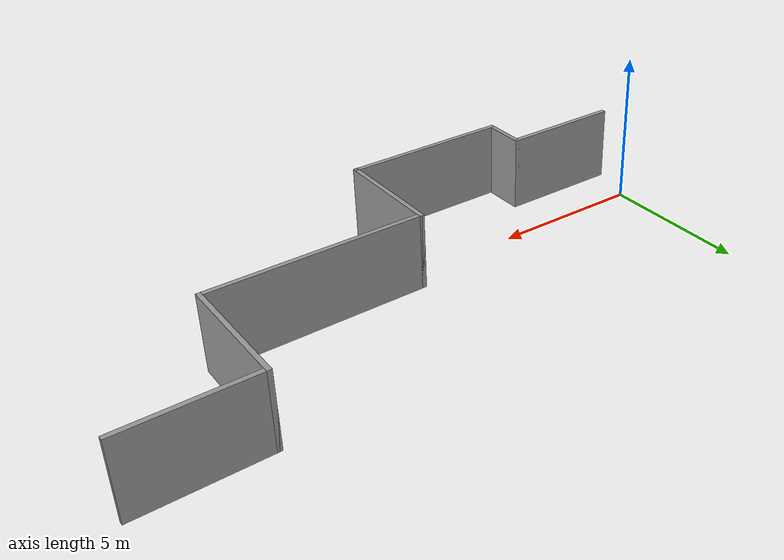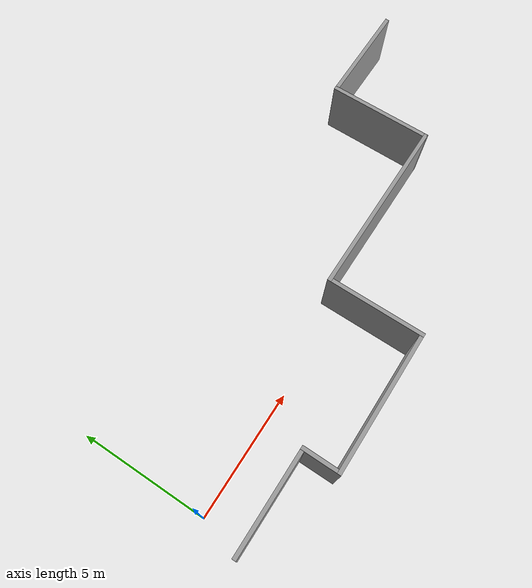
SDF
<?xml version='1.0'?>
<sdf version='1.6'>
  <model name='building1.world'>
    <pose frame=''>9.53 0.765 0 0 -0 0</pose>
    <link name='Wall_0'>
      <collision name='Wall_0_Collision'>
        <geometry>
          <box>
            <size>4 0.15 2.5</size>
          </box>
        </geometry>
        <pose frame=''>0 0 1.25 0 -0 0</pose>
      </collision>
      <visual name='Wall_0_Visual'>
        <pose frame=''>0 0 1.25 0 -0 0</pose>
        <geometry>
          <box>
            <size>4 0.15 2.5</size>
          </box>
        </geometry>
        <material>
          <script>
            <uri>file://media/materials/scripts/gazebo.material</uri>
            <name>Gazebo/Grey</name>
          </script>
          <ambient>1 1 1 1</ambient>
        </material>
        <meta>
          <layer>0</layer>
        </meta>
      </visual>
      <pose frame=''>-8.025 -2.375 0 0 -0 0</pose>
    </link>
    <link name='Wall_1'>
      <collision name='Wall_1_Collision'>
        <geometry>
          <box>
            <size>1.5 0.15 2.5</size>
          </box>
        </geometry>
        <pose frame=''>0 0 1.25 0 -0 0</pose>
      </collision>
      <visual name='Wall_1_Visual'>
        <pose frame=''>0 0 1.25 0 -0 0</pose>
        <geometry>
          <box>
            <size>1.5 0.15 2.5</size>
          </box>
        </geometry>
        <material>
          <script>
            <uri>file://media/materials/scripts/gazebo.material</uri>
            <name>Gazebo/Grey</name>
          </script>
          <ambient>1 1 1 1</ambient>
        </material>
        <meta>
          <layer>0</layer>
        </meta>
      </visual>
      <pose frame=''>-6.1 -3.05 0 0 -0 -1.5708</pose>
    </link>
    <link name='Wall_3'>
      <collision name='Wall_3_Collision'>
        <geometry>
          <box>
            <size>5.5 0.15 2.5</size>
          </box>
        </geometry>
        <pose frame=''>0 0 1.25 0 -0 0</pose>
      </collision>
      <visual name='Wall_3_Visual'>
        <pose frame=''>0 0 1.25 0 -0 0</pose>
        <geometry>
          <box>
            <size>5.5 0.15 2.5</size>
          </box>
        </geometry>
        <material>
          <script>
            <uri>file://media/materials/scripts/gazebo.material</uri>
            <name>Gazebo/Grey</name>
          </script>
          <ambient>1 1 1 1</ambient>
        </material>
        <meta>
          <layer>0</layer>
        </meta>
      </visual>
      <pose frame=''>-3.425 -3.725 0 0 -0 0</pose>
    </link>
    <link name='Wall_4'>
      <collision name='Wall_4_Collision'>
        <geometry>
          <box>
            <size>3.75 0.15 2.5</size>
          </box>
        </geometry>
        <pose frame=''>0 0 1.25 0 -0 0</pose>
      </collision>
      <visual name='Wall_4_Visual'>
        <pose frame=''>0 0 1.25 0 -0 0</pose>
        <geometry>
          <box>
            <size>3.75 0.15 2.5</size>
          </box>
        </geometry>
        <material>
          <script>
            <uri>file://media/materials/scripts/gazebo.material</uri>
            <name>Gazebo/Grey</name>
          </script>
          <ambient>1 1 1 1</ambient>
        </material>
        <meta>
          <layer>0</layer>
        </meta>
      </visual>
      <pose frame=''>-0.75 -1.925 0 0 -0 1.5708</pose>
    </link>
    <link name='Wall_5'>
      <collision name='Wall_5_Collision'>
        <geometry>
          <box>
            <size>7 0.15 2.5</size>
          </box>
        </geometry>
        <pose frame=''>0 0 1.25 0 -0 0</pose>
      </collision>
      <visual name='Wall_5_Visual'>
        <pose frame=''>0 0 1.25 0 -0 0</pose>
        <geometry>
          <box>
            <size>7 0.15 2.5</size>
          </box>
        </geometry>
        <material>
          <script>
            <uri>file://media/materials/scripts/gazebo.material</uri>
            <name>Gazebo/Grey</name>
          </script>
          <ambient>1 1 1 1</ambient>
        </material>
        <meta>
          <layer>0</layer>
        </meta>
      </visual>
      <pose frame=''>2.675 -0.125 0 0 -0 0</pose>
    </link>
    <link name='Wall_6'>
      <collision name='Wall_6_Collision'>
        <geometry>
          <box>
            <size>4 0.15 2.5</size>
          </box>
        </geometry>
        <pose frame=''>0 0 1.25 0 -0 0</pose>
      </collision>
      <visual name='Wall_6_Visual'>
        <pose frame=''>0 0 1.25 0 -0 0</pose>
        <geometry>
          <box>
            <size>4 0.15 2.5</size>
          </box>
        </geometry>
        <material>
          <script>
            <uri>file://media/materials/scripts/gazebo.material</uri>
            <name>Gazebo/Grey</name>
          </script>
          <ambient>1 1 1 1</ambient>
        </material>
        <meta>
          <layer>0</layer>
        </meta>
      </visual>
      <pose frame=''>6.1 1.8 0 0 -0 1.5708</pose>
    </link>
    <link name='Wall_7'>
      <collision name='Wall_7_Collision'>
        <geometry>
          <box>
            <size>4 0.15 2.5</size>
          </box>
        </geometry>
        <pose frame=''>0 0 1.25 0 -0 0</pose>
      </collision>
      <visual name='Wall_7_Visual'>
        <pose frame=''>0 0 1.25 0 -0 0</pose>
        <geometry>
          <box>
            <size>4 0.15 2.5</size>
          </box>
        </geometry>
        <material>
          <script>
            <uri>file://media/materials/scripts/gazebo.material</uri>
            <name>Gazebo/Grey</name>
          </script>
          <ambient>1 1 1 1</ambient>
        </material>
        <meta>
          <layer>0</layer>
        </meta>
      </visual>
      <pose frame=''>8.025 3.725 0 0 -0 0</pose>
    </link>
    <static>1</static>
  </model>
</sdf>
